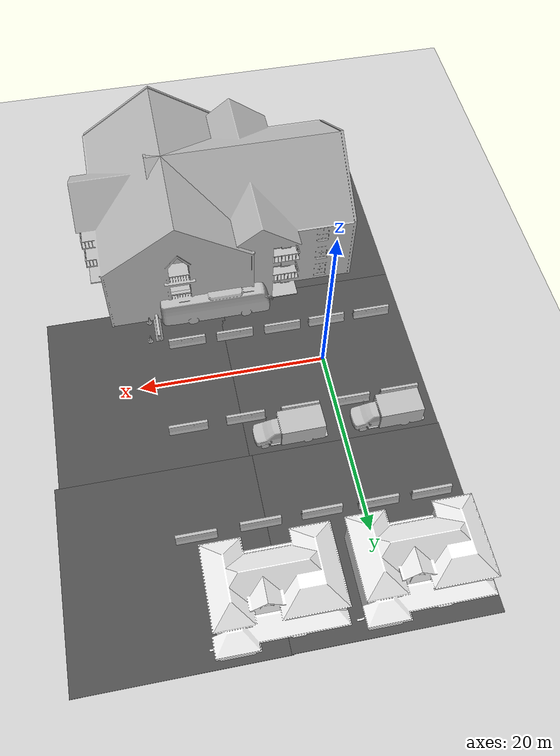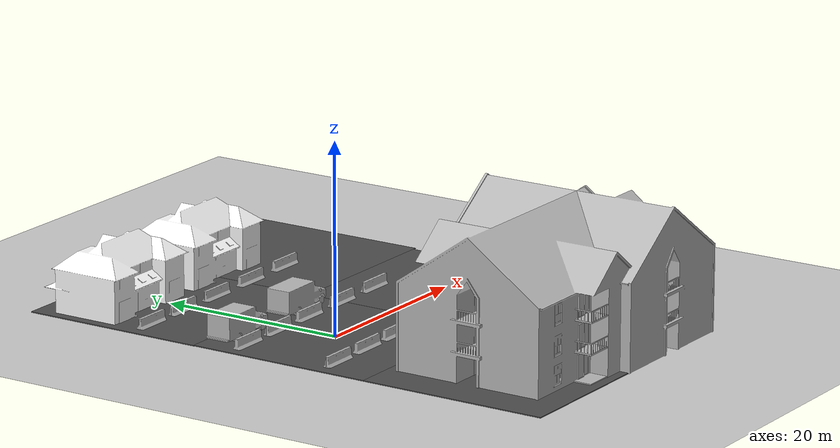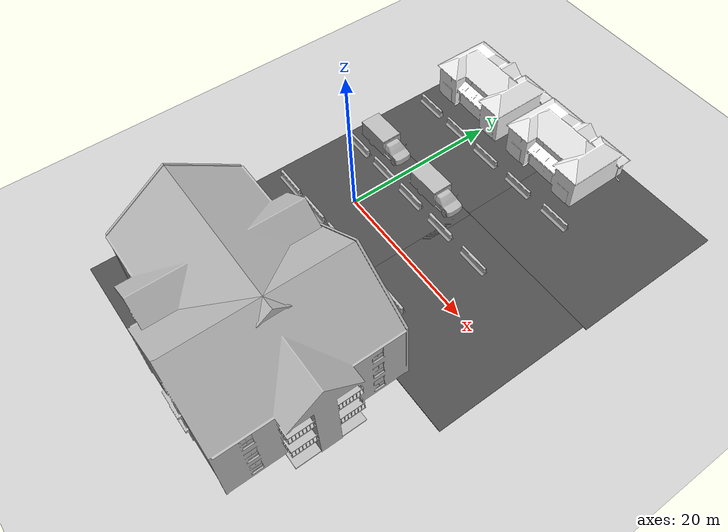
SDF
<sdf version="1.6">
 <world name="default">
  <model name="ground_plane">
   <static>1</static>
   <link name="link">
    <collision name="collision">
     <geometry><plane><normal>0 0 1</normal><size>100 100</size></plane></geometry>
     <surface><friction><ode><mu>100</mu><mu2>50</mu2></ode></friction></surface>
    </collision>
    <visual name="visual">
     <cast_shadows>0</cast_shadows>
     <geometry><plane><normal>0 0 1</normal><size>100 100</size></plane></geometry>
     <material>
      <script><uri>file://media/materials/scripts/gazebo.material</uri><name>Gazebo/Grey</name></script>
     </material>
    </visual>
   </link>
  </model>
  <model name="asphalt_plane">
   <static>1</static>
   <link name="link">
    <collision name="collision"><geometry><box><size>20 20 0.1</size></box></geometry></collision>
    <visual name="visual">
     <cast_shadows>0</cast_shadows>
     <geometry><box><size>20 20 0.1</size></box></geometry>
     <material>
      <script>
       <uri>model://asphalt_plane/materials/scripts</uri>
       <uri>model://asphalt_plane/materials/textures</uri>
       <name>vrc/asphalt</name>
      </script>
     </material>
    </visual>
   </link>
   <pose>0.038401 -0.024145 0 0 -0 0</pose>
  </model>
  <model name="ambulance_clone_0">
   <static>1</static>
   <link name="link">
    <collision name="collision">
     <geometry>
      <mesh><scale>0.0254 0.0254 0.0254</scale><uri>model://ambulance/meshes/ambulance.obj</uri></mesh>
     </geometry>
    </collision>
    <visual name="visual">
     <geometry>
      <mesh><scale>0.0254 0.0254 0.0254</scale><uri>model://ambulance/meshes/ambulance.obj</uri></mesh>
     </geometry>
    </visual>
   </link>
   <pose>5.43885 8.29699 0 0 -0 1.58332</pose>
  </model>
  <model name="ambulance_clone_1">
   <static>1</static>
   <link name="link">
    <collision name="collision">
     <geometry>
      <mesh><scale>0.0254 0.0254 0.0254</scale><uri>model://ambulance/meshes/ambulance.obj</uri></mesh>
     </geometry>
    </collision>
    <visual name="visual">
     <geometry>
      <mesh><scale>0.0254 0.0254 0.0254</scale><uri>model://ambulance/meshes/ambulance.obj</uri></mesh>
     </geometry>
    </visual>
   </link>
   <pose>-4.8495 8.29333 0 0 -0 1.58332</pose>
  </model>
  <model name="bus_clone_clone_0">
   <static>1</static>
   <link name="link">
    <collision name="collision">
     <geometry><mesh><scale>0.01 0.01 0.01</scale><uri>model://bus/meshes/bus.obj</uri></mesh></geometry>
    </collision>
    <visual name="visual">
     <geometry><mesh><scale>0.01 0.01 0.01</scale><uri>model://bus/meshes/bus.obj</uri></mesh></geometry>
    </visual>
   </link>
   <pose>10.3358 -8.52883 0 0 0 -1.56946</pose>
  </model>
  <model name="jersey_barrier_clone_clone_6">
   <static>1</static>
   <link name="link">
    <visual name="visual">
     <geometry><mesh><uri>model://jersey_barrier/meshes/jersey_barrier.dae</uri></mesh></geometry>
    </visual>
    <collision name="upright">
     <pose>0 0 0.5715 0 -0 0</pose>
     <geometry><box><size>4.06542 0.3063 1.143</size></box></geometry>
    </collision>
    <collision name="base">
     <pose>0 0 0.032258 0 -0 0</pose>
     <geometry><box><size>4.06542 0.8107 0.064516</size></box></geometry>
    </collision>
    <collision name="base2">
     <pose>0 0 0.1 0 -0 0</pose>
     <geometry><box><size>4.06542 0.65 0.1</size></box></geometry>
    </collision>
    <collision name="base3">
     <pose>0 0 0.2 0 -0 0</pose>
     <geometry><box><size>4.06542 0.5 0.1</size></box></geometry>
    </collision>
    <collision name="left-angle">
     <pose>0 -0.224 0.2401 0.9 -0 0</pose>
     <geometry><box><size>4.06542 0.5 0.064516</size></box></geometry>
    </collision>
    <collision name="right-angle">
     <pose>0 0.224 0.2401 -0.9 0 0</pose>
     <geometry><box><size>4.06542 0.5 0.064516</size></box></geometry>
    </collision>
   </link>
   <pose>-6.91533 5.59727 0 0 -0 0</pose>
  </model>
  <model name="jersey_barrier_clone_clone_7">
   <static>1</static>
   <link name="link">
    <visual name="visual">
     <geometry><mesh><uri>model://jersey_barrier/meshes/jersey_barrier.dae</uri></mesh></geometry>
    </visual>
    <collision name="upright">
     <pose>0 0 0.5715 0 -0 0</pose>
     <geometry><box><size>4.06542 0.3063 1.143</size></box></geometry>
    </collision>
    <collision name="base">
     <pose>0 0 0.032258 0 -0 0</pose>
     <geometry><box><size>4.06542 0.8107 0.064516</size></box></geometry>
    </collision>
    <collision name="base2">
     <pose>0 0 0.1 0 -0 0</pose>
     <geometry><box><size>4.06542 0.65 0.1</size></box></geometry>
    </collision>
    <collision name="base3">
     <pose>0 0 0.2 0 -0 0</pose>
     <geometry><box><size>4.06542 0.5 0.1</size></box></geometry>
    </collision>
    <collision name="left-angle">
     <pose>0 -0.224 0.2401 0.9 -0 0</pose>
     <geometry><box><size>4.06542 0.5 0.064516</size></box></geometry>
    </collision>
    <collision name="right-angle">
     <pose>0 0.224 0.2401 -0.9 0 0</pose>
     <geometry><box><size>4.06542 0.5 0.064516</size></box></geometry>
    </collision>
   </link>
   <pose>-1.61842 5.66994 0 0 -0 0</pose>
  </model>
  <model name="jersey_barrier_clone_clone_8">
   <static>1</static>
   <link name="link">
    <visual name="visual">
     <geometry><mesh><uri>model://jersey_barrier/meshes/jersey_barrier.dae</uri></mesh></geometry>
    </visual>
    <collision name="upright">
     <pose>0 0 0.5715 0 -0 0</pose>
     <geometry><box><size>4.06542 0.3063 1.143</size></box></geometry>
    </collision>
    <collision name="base">
     <pose>0 0 0.032258 0 -0 0</pose>
     <geometry><box><size>4.06542 0.8107 0.064516</size></box></geometry>
    </collision>
    <collision name="base2">
     <pose>0 0 0.1 0 -0 0</pose>
     <geometry><box><size>4.06542 0.65 0.1</size></box></geometry>
    </collision>
    <collision name="base3">
     <pose>0 0 0.2 0 -0 0</pose>
     <geometry><box><size>4.06542 0.5 0.1</size></box></geometry>
    </collision>
    <collision name="left-angle">
     <pose>0 -0.224 0.2401 0.9 -0 0</pose>
     <geometry><box><size>4.06542 0.5 0.064516</size></box></geometry>
    </collision>
    <collision name="right-angle">
     <pose>0 0.224 0.2401 -0.9 0 0</pose>
     <geometry><box><size>4.06542 0.5 0.064516</size></box></geometry>
    </collision>
   </link>
   <pose>3.81822 5.69762 0 0 -0 0</pose>
  </model>
  <model name="jersey_barrier_clone_clone_9">
   <static>1</static>
   <link name="link">
    <visual name="visual">
     <geometry><mesh><uri>model://jersey_barrier/meshes/jersey_barrier.dae</uri></mesh></geometry>
    </visual>
    <collision name="upright">
     <pose>0 0 0.5715 0 -0 0</pose>
     <geometry><box><size>4.06542 0.3063 1.143</size></box></geometry>
    </collision>
    <collision name="base">
     <pose>0 0 0.032258 0 -0 0</pose>
     <geometry><box><size>4.06542 0.8107 0.064516</size></box></geometry>
    </collision>
    <collision name="base2">
     <pose>0 0 0.1 0 -0 0</pose>
     <geometry><box><size>4.06542 0.65 0.1</size></box></geometry>
    </collision>
    <collision name="base3">
     <pose>0 0 0.2 0 -0 0</pose>
     <geometry><box><size>4.06542 0.5 0.1</size></box></geometry>
    </collision>
    <collision name="left-angle">
     <pose>0 -0.224 0.2401 0.9 -0 0</pose>
     <geometry><box><size>4.06542 0.5 0.064516</size></box></geometry>
    </collision>
    <collision name="right-angle">
     <pose>0 0.224 0.2401 -0.9 0 0</pose>
     <geometry><box><size>4.06542 0.5 0.064516</size></box></geometry>
    </collision>
   </link>
   <pose>9.6281 5.69665 0 0 -0 0</pose>
  </model>
  <model name="jersey_barrier_clone_clone_10">
   <static>1</static>
   <link name="link">
    <visual name="visual">
     <geometry><mesh><uri>model://jersey_barrier/meshes/jersey_barrier.dae</uri></mesh></geometry>
    </visual>
    <collision name="upright">
     <pose>0 0 0.5715 0 -0 0</pose>
     <geometry><box><size>4.06542 0.3063 1.143</size></box></geometry>
    </collision>
    <collision name="base">
     <pose>0 0 0.032258 0 -0 0</pose>
     <geometry><box><size>4.06542 0.8107 0.064516</size></box></geometry>
    </collision>
    <collision name="base2">
     <pose>0 0 0.1 0 -0 0</pose>
     <geometry><box><size>4.06542 0.65 0.1</size></box></geometry>
    </collision>
    <collision name="base3">
     <pose>0 0 0.2 0 -0 0</pose>
     <geometry><box><size>4.06542 0.5 0.1</size></box></geometry>
    </collision>
    <collision name="left-angle">
     <pose>0 -0.224 0.2401 0.9 -0 0</pose>
     <geometry><box><size>4.06542 0.5 0.064516</size></box></geometry>
    </collision>
    <collision name="right-angle">
     <pose>0 0.224 0.2401 -0.9 0 0</pose>
     <geometry><box><size>4.06542 0.5 0.064516</size></box></geometry>
    </collision>
   </link>
   <pose>15.6527 5.7646 0 0 -0 0</pose>
  </model>
  <model name="asphalt_plane_0_clone_clone_clone">
   <static>1</static>
   <link name="link">
    <collision name="collision"><geometry><box><size>20 20 0.1</size></box></geometry></collision>
    <visual name="visual">
     <cast_shadows>0</cast_shadows>
     <geometry><box><size>20 20 0.1</size></box></geometry>
     <material>
      <script>
       <uri>model://asphalt_plane/materials/scripts</uri>
       <uri>model://asphalt_plane/materials/textures</uri>
       <name>vrc/asphalt</name>
      </script>
     </material>
    </visual>
   </link>
   <pose>19.7772 19.9803 0 0 -0 0</pose>
  </model>
  <model name="asphalt_plane_0_clone_clone_clone_0">
   <static>1</static>
   <link name="link">
    <collision name="collision"><geometry><box><size>20 20 0.1</size></box></geometry></collision>
    <visual name="visual">
     <cast_shadows>0</cast_shadows>
     <geometry><box><size>20 20 0.1</size></box></geometry>
     <material>
      <script>
       <uri>model://asphalt_plane/materials/scripts</uri>
       <uri>model://asphalt_plane/materials/textures</uri>
       <name>vrc/asphalt</name>
      </script>
     </material>
    </visual>
   </link>
   <pose>-0.023534 19.9191 0 0 -0 0</pose>
  </model>
  <model name="asphalt_plane_clone">
   <static>1</static>
   <link name="link">
    <collision name="collision"><geometry><box><size>20 20 0.1</size></box></geometry></collision>
    <visual name="visual">
     <cast_shadows>0</cast_shadows>
     <geometry><box><size>20 20 0.1</size></box></geometry>
     <material>
      <script>
       <uri>model://asphalt_plane/materials/scripts</uri>
       <uri>model://asphalt_plane/materials/textures</uri>
       <name>vrc/asphalt</name>
      </script>
     </material>
    </visual>
   </link>
   <pose>0.029124 -19.9947 0 0 -0 0</pose>
  </model>
  <model name="asphalt_plane_clone_0">
   <static>1</static>
   <link name="link">
    <collision name="collision"><geometry><box><size>20 20 0.1</size></box></geometry></collision>
    <visual name="visual">
     <cast_shadows>0</cast_shadows>
     <geometry><box><size>20 20 0.1</size></box></geometry>
     <material>
      <script>
       <uri>model://asphalt_plane/materials/scripts</uri>
       <uri>model://asphalt_plane/materials/textures</uri>
       <name>vrc/asphalt</name>
      </script>
     </material>
    </visual>
   </link>
   <pose>19.3312 0.000609 0 0 -0 0</pose>
  </model>
  <model name="apartment">
   <static>1</static>
   <link name="link">
    <collision name="collision">
     <geometry><mesh><uri>model://apartment/meshes/apartment.dae</uri></mesh></geometry>
    </collision>
    <visual name="visual">
     <geometry><mesh><uri>model://apartment/meshes/apartment.dae</uri></mesh></geometry>
    </visual>
   </link>
   <pose>14.0681 -19.3365 0 0 -0 0</pose>
  </model>
  <model name="apartment_clone">
   <static>1</static>
   <link name="link">
    <collision name="collision">
     <geometry><mesh><uri>model://apartment/meshes/apartment.dae</uri></mesh></geometry>
    </collision>
    <visual name="visual">
     <geometry><mesh><uri>model://apartment/meshes/apartment.dae</uri></mesh></geometry>
    </visual>
   </link>
   <pose>5.00965 -19.0612 0 0 -0 1.57096</pose>
  </model>
  <model name="jersey_barrier_clone_clone_8_clone">
   <static>1</static>
   <link name="link">
    <visual name="visual">
     <geometry><mesh><uri>model://jersey_barrier/meshes/jersey_barrier.dae</uri></mesh></geometry>
    </visual>
    <collision name="upright">
     <pose>0 0 0.5715 0 -0 0</pose>
     <geometry><box><size>4.06542 0.3063 1.143</size></box></geometry>
    </collision>
    <collision name="base">
     <pose>0 0 0.032258 0 -0 0</pose>
     <geometry><box><size>4.06542 0.8107 0.064516</size></box></geometry>
    </collision>
    <collision name="base2">
     <pose>0 0 0.1 0 -0 0</pose>
     <geometry><box><size>4.06542 0.65 0.1</size></box></geometry>
    </collision>
    <collision name="base3">
     <pose>0 0 0.2 0 -0 0</pose>
     <geometry><box><size>4.06542 0.5 0.1</size></box></geometry>
    </collision>
    <collision name="left-angle">
     <pose>0 -0.224 0.2401 0.9 -0 0</pose>
     <geometry><box><size>4.06542 0.5 0.064516</size></box></geometry>
    </collision>
    <collision name="right-angle">
     <pose>0 0.224 0.2401 -0.9 0 0</pose>
     <geometry><box><size>4.06542 0.5 0.064516</size></box></geometry>
    </collision>
   </link>
   <pose>-6.69048 -4.89725 0 0 -0 0</pose>
  </model>
  <model name="jersey_barrier_clone_clone_8_clone_0">
   <static>1</static>
   <link name="link">
    <visual name="visual">
     <geometry><mesh><uri>model://jersey_barrier/meshes/jersey_barrier.dae</uri></mesh></geometry>
    </visual>
    <collision name="upright">
     <pose>0 0 0.5715 0 -0 0</pose>
     <geometry><box><size>4.06542 0.3063 1.143</size></box></geometry>
    </collision>
    <collision name="base">
     <pose>0 0 0.032258 0 -0 0</pose>
     <geometry><box><size>4.06542 0.8107 0.064516</size></box></geometry>
    </collision>
    <collision name="base2">
     <pose>0 0 0.1 0 -0 0</pose>
     <geometry><box><size>4.06542 0.65 0.1</size></box></geometry>
    </collision>
    <collision name="base3">
     <pose>0 0 0.2 0 -0 0</pose>
     <geometry><box><size>4.06542 0.5 0.1</size></box></geometry>
    </collision>
    <collision name="left-angle">
     <pose>0 -0.224 0.2401 0.9 -0 0</pose>
     <geometry><box><size>4.06542 0.5 0.064516</size></box></geometry>
    </collision>
    <collision name="right-angle">
     <pose>0 0.224 0.2401 -0.9 0 0</pose>
     <geometry><box><size>4.06542 0.5 0.064516</size></box></geometry>
    </collision>
   </link>
   <pose>-1.51348 -4.8357 0 0 -0 0</pose>
  </model>
  <model name="jersey_barrier_clone_clone_8_clone_1">
   <static>1</static>
   <link name="link">
    <visual name="visual">
     <geometry><mesh><uri>model://jersey_barrier/meshes/jersey_barrier.dae</uri></mesh></geometry>
    </visual>
    <collision name="upright">
     <pose>0 0 0.5715 0 -0 0</pose>
     <geometry><box><size>4.06542 0.3063 1.143</size></box></geometry>
    </collision>
    <collision name="base">
     <pose>0 0 0.032258 0 -0 0</pose>
     <geometry><box><size>4.06542 0.8107 0.064516</size></box></geometry>
    </collision>
    <collision name="base2">
     <pose>0 0 0.1 0 -0 0</pose>
     <geometry><box><size>4.06542 0.65 0.1</size></box></geometry>
    </collision>
    <collision name="base3">
     <pose>0 0 0.2 0 -0 0</pose>
     <geometry><box><size>4.06542 0.5 0.1</size></box></geometry>
    </collision>
    <collision name="left-angle">
     <pose>0 -0.224 0.2401 0.9 -0 0</pose>
     <geometry><box><size>4.06542 0.5 0.064516</size></box></geometry>
    </collision>
    <collision name="right-angle">
     <pose>0 0.224 0.2401 -0.9 0 0</pose>
     <geometry><box><size>4.06542 0.5 0.064516</size></box></geometry>
    </collision>
   </link>
   <pose>3.52325 -4.78507 0 0 -0 0</pose>
  </model>
  <model name="jersey_barrier_clone_clone_8_clone_2">
   <static>1</static>
   <link name="link">
    <visual name="visual">
     <geometry><mesh><uri>model://jersey_barrier/meshes/jersey_barrier.dae</uri></mesh></geometry>
    </visual>
    <collision name="upright">
     <pose>0 0 0.5715 0 -0 0</pose>
     <geometry><box><size>4.06542 0.3063 1.143</size></box></geometry>
    </collision>
    <collision name="base">
     <pose>0 0 0.032258 0 -0 0</pose>
     <geometry><box><size>4.06542 0.8107 0.064516</size></box></geometry>
    </collision>
    <collision name="base2">
     <pose>0 0 0.1 0 -0 0</pose>
     <geometry><box><size>4.06542 0.65 0.1</size></box></geometry>
    </collision>
    <collision name="base3">
     <pose>0 0 0.2 0 -0 0</pose>
     <geometry><box><size>4.06542 0.5 0.1</size></box></geometry>
    </collision>
    <collision name="left-angle">
     <pose>0 -0.224 0.2401 0.9 -0 0</pose>
     <geometry><box><size>4.06542 0.5 0.064516</size></box></geometry>
    </collision>
    <collision name="right-angle">
     <pose>0 0.224 0.2401 -0.9 0 0</pose>
     <geometry><box><size>4.06542 0.5 0.064516</size></box></geometry>
    </collision>
   </link>
   <pose>8.89024 -4.80077 0 0 -0 0</pose>
  </model>
  <model name="jersey_barrier_clone_clone_8_clone_3">
   <static>1</static>
   <link name="link">
    <visual name="visual">
     <geometry><mesh><uri>model://jersey_barrier/meshes/jersey_barrier.dae</uri></mesh></geometry>
    </visual>
    <collision name="upright">
     <pose>0 0 0.5715 0 -0 0</pose>
     <geometry><box><size>4.06542 0.3063 1.143</size></box></geometry>
    </collision>
    <collision name="base">
     <pose>0 0 0.032258 0 -0 0</pose>
     <geometry><box><size>4.06542 0.8107 0.064516</size></box></geometry>
    </collision>
    <collision name="base2">
     <pose>0 0 0.1 0 -0 0</pose>
     <geometry><box><size>4.06542 0.65 0.1</size></box></geometry>
    </collision>
    <collision name="base3">
     <pose>0 0 0.2 0 -0 0</pose>
     <geometry><box><size>4.06542 0.5 0.1</size></box></geometry>
    </collision>
    <collision name="left-angle">
     <pose>0 -0.224 0.2401 0.9 -0 0</pose>
     <geometry><box><size>4.06542 0.5 0.064516</size></box></geometry>
    </collision>
    <collision name="right-angle">
     <pose>0 0.224 0.2401 -0.9 0 0</pose>
     <geometry><box><size>4.06542 0.5 0.064516</size></box></geometry>
    </collision>
   </link>
   <pose>14.1981 -4.82424 0 0 -0 0</pose>
  </model>
  <model name="House 2_clone">
   <static>1</static>
   <link name="link">
    <collision name="collision">
     <geometry><mesh><uri>model://house_2/meshes/house_2.dae</uri><scale>1.5 1.5 1.5</scale></mesh></geometry>
    </collision>
    <visual name="visual">
     <geometry><mesh><uri>model://house_2/meshes/house_2.dae</uri><scale>1.5 1.5 1.5</scale></mesh></geometry>
     <material>
      <script>
       <uri>model://house_2/materials/scripts</uri>
       <uri>model://house_2/materials/textures</uri>
       <uri>model://house_1/materials/textures</uri>
       <name>House_2/Diffuse</name>
      </script>
      <shader type="normal_map_tangent_space">
       <normal_map>model://house_1/materials/textures/House_1_Normal.png</normal_map>
      </shader>
     </material>
    </visual>
   </link>
   <pose>9.562 24.1064 0 0 -0 0</pose>
  </model>
  <model name="House 2_clone_0">
   <static>1</static>
   <link name="link">
    <collision name="collision">
     <geometry><mesh><uri>model://house_2/meshes/house_2.dae</uri><scale>1.5 1.5 1.5</scale></mesh></geometry>
    </collision>
    <visual name="visual">
     <geometry><mesh><uri>model://house_2/meshes/house_2.dae</uri><scale>1.5 1.5 1.5</scale></mesh></geometry>
     <material>
      <script>
       <uri>model://house_2/materials/scripts</uri>
       <uri>model://house_2/materials/textures</uri>
       <uri>model://house_1/materials/textures</uri>
       <name>House_2/Diffuse</name>
      </script>
      <shader type="normal_map_tangent_space">
       <normal_map>model://house_1/materials/textures/House_1_Normal.png</normal_map>
      </shader>
     </material>
    </visual>
   </link>
   <pose>-4.05168 24.0012 0 0 -0 0</pose>
  </model>
  <model name="jersey_barrier_clone_clone_10_clone">
   <static>1</static>
   <link name="link">
    <visual name="visual">
     <geometry><mesh><uri>model://jersey_barrier/meshes/jersey_barrier.dae</uri></mesh></geometry>
    </visual>
    <collision name="upright">
     <pose>0 0 0.5715 0 -0 0</pose>
     <geometry><box><size>4.06542 0.3063 1.143</size></box></geometry>
    </collision>
    <collision name="base">
     <pose>0 0 0.032258 0 -0 0</pose>
     <geometry><box><size>4.06542 0.8107 0.064516</size></box></geometry>
    </collision>
    <collision name="base2">
     <pose>0 0 0.1 0 -0 0</pose>
     <geometry><box><size>4.06542 0.65 0.1</size></box></geometry>
    </collision>
    <collision name="base3">
     <pose>0 0 0.2 0 -0 0</pose>
     <geometry><box><size>4.06542 0.5 0.1</size></box></geometry>
    </collision>
    <collision name="left-angle">
     <pose>0 -0.224 0.2401 0.9 -0 0</pose>
     <geometry><box><size>4.06542 0.5 0.064516</size></box></geometry>
    </collision>
    <collision name="right-angle">
     <pose>0 0.224 0.2401 -0.9 0 0</pose>
     <geometry><box><size>4.06542 0.5 0.064516</size></box></geometry>
    </collision>
   </link>
   <pose>-6.86303 17.3309 0 0 -0 0</pose>
  </model>
  <model name="jersey_barrier_clone_clone_10_clone_0">
   <static>1</static>
   <link name="link">
    <visual name="visual">
     <geometry><mesh><uri>model://jersey_barrier/meshes/jersey_barrier.dae</uri></mesh></geometry>
    </visual>
    <collision name="upright">
     <pose>0 0 0.5715 0 -0 0</pose>
     <geometry><box><size>4.06542 0.3063 1.143</size></box></geometry>
    </collision>
    <collision name="base">
     <pose>0 0 0.032258 0 -0 0</pose>
     <geometry><box><size>4.06542 0.8107 0.064516</size></box></geometry>
    </collision>
    <collision name="base2">
     <pose>0 0 0.1 0 -0 0</pose>
     <geometry><box><size>4.06542 0.65 0.1</size></box></geometry>
    </collision>
    <collision name="base3">
     <pose>0 0 0.2 0 -0 0</pose>
     <geometry><box><size>4.06542 0.5 0.1</size></box></geometry>
    </collision>
    <collision name="left-angle">
     <pose>0 -0.224 0.2401 0.9 -0 0</pose>
     <geometry><box><size>4.06542 0.5 0.064516</size></box></geometry>
    </collision>
    <collision name="right-angle">
     <pose>0 0.224 0.2401 -0.9 0 0</pose>
     <geometry><box><size>4.06542 0.5 0.064516</size></box></geometry>
    </collision>
   </link>
   <pose>-1.44866 17.3531 0 0 -0 0</pose>
  </model>
  <model name="jersey_barrier_clone_clone_10_clone_1">
   <static>1</static>
   <link name="link">
    <visual name="visual">
     <geometry><mesh><uri>model://jersey_barrier/meshes/jersey_barrier.dae</uri></mesh></geometry>
    </visual>
    <collision name="upright">
     <pose>0 0 0.5715 0 -0 0</pose>
     <geometry><box><size>4.06542 0.3063 1.143</size></box></geometry>
    </collision>
    <collision name="base">
     <pose>0 0 0.032258 0 -0 0</pose>
     <geometry><box><size>4.06542 0.8107 0.064516</size></box></geometry>
    </collision>
    <collision name="base2">
     <pose>0 0 0.1 0 -0 0</pose>
     <geometry><box><size>4.06542 0.65 0.1</size></box></geometry>
    </collision>
    <collision name="base3">
     <pose>0 0 0.2 0 -0 0</pose>
     <geometry><box><size>4.06542 0.5 0.1</size></box></geometry>
    </collision>
    <collision name="left-angle">
     <pose>0 -0.224 0.2401 0.9 -0 0</pose>
     <geometry><box><size>4.06542 0.5 0.064516</size></box></geometry>
    </collision>
    <collision name="right-angle">
     <pose>0 0.224 0.2401 -0.9 0 0</pose>
     <geometry><box><size>4.06542 0.5 0.064516</size></box></geometry>
    </collision>
   </link>
   <pose>4.23364 17.311 0 0 -0 0</pose>
  </model>
  <model name="jersey_barrier_clone_clone_10_clone_2">
   <static>1</static>
   <link name="link">
    <visual name="visual">
     <geometry><mesh><uri>model://jersey_barrier/meshes/jersey_barrier.dae</uri></mesh></geometry>
    </visual>
    <collision name="upright">
     <pose>0 0 0.5715 0 -0 0</pose>
     <geometry><box><size>4.06542 0.3063 1.143</size></box></geometry>
    </collision>
    <collision name="base">
     <pose>0 0 0.032258 0 -0 0</pose>
     <geometry><box><size>4.06542 0.8107 0.064516</size></box></geometry>
    </collision>
    <collision name="base2">
     <pose>0 0 0.1 0 -0 0</pose>
     <geometry><box><size>4.06542 0.65 0.1</size></box></geometry>
    </collision>
    <collision name="base3">
     <pose>0 0 0.2 0 -0 0</pose>
     <geometry><box><size>4.06542 0.5 0.1</size></box></geometry>
    </collision>
    <collision name="left-angle">
     <pose>0 -0.224 0.2401 0.9 -0 0</pose>
     <geometry><box><size>4.06542 0.5 0.064516</size></box></geometry>
    </collision>
    <collision name="right-angle">
     <pose>0 0.224 0.2401 -0.9 0 0</pose>
     <geometry><box><size>4.06542 0.5 0.064516</size></box></geometry>
    </collision>
   </link>
   <pose>10.3479 17.3742 0 0 -0 0</pose>
  </model>
  <model name="jersey_barrier_clone_clone_10_clone_3">
   <static>1</static>
   <link name="link">
    <visual name="visual">
     <geometry><mesh><uri>model://jersey_barrier/meshes/jersey_barrier.dae</uri></mesh></geometry>
    </visual>
    <collision name="upright">
     <pose>0 0 0.5715 0 -0 0</pose>
     <geometry><box><size>4.06542 0.3063 1.143</size></box></geometry>
    </collision>
    <collision name="base">
     <pose>0 0 0.032258 0 -0 0</pose>
     <geometry><box><size>4.06542 0.8107 0.064516</size></box></geometry>
    </collision>
    <collision name="base2">
     <pose>0 0 0.1 0 -0 0</pose>
     <geometry><box><size>4.06542 0.65 0.1</size></box></geometry>
    </collision>
    <collision name="base3">
     <pose>0 0 0.2 0 -0 0</pose>
     <geometry><box><size>4.06542 0.5 0.1</size></box></geometry>
    </collision>
    <collision name="left-angle">
     <pose>0 -0.224 0.2401 0.9 -0 0</pose>
     <geometry><box><size>4.06542 0.5 0.064516</size></box></geometry>
    </collision>
    <collision name="right-angle">
     <pose>0 0.224 0.2401 -0.9 0 0</pose>
     <geometry><box><size>4.06542 0.5 0.064516</size></box></geometry>
    </collision>
   </link>
   <pose>16.6687 17.5357 0 0 -0 0</pose>
  </model>
  <model name="jersey_barrier_clone_clone_10_clone_4_clone_2_clone_0">
   <static>1</static>
   <link name="link">
    <visual name="visual">
     <geometry><mesh><uri>model://jersey_barrier/meshes/jersey_barrier.dae</uri></mesh></geometry>
    </visual>
    <collision name="upright">
     <pose>0 0 0.5715 0 -0 0</pose>
     <geometry><box><size>4.06542 0.3063 1.143</size></box></geometry>
    </collision>
    <collision name="base">
     <pose>0 0 0.032258 0 -0 0</pose>
     <geometry><box><size>4.06542 0.8107 0.064516</size></box></geometry>
    </collision>
    <collision name="base2">
     <pose>0 0 0.1 0 -0 0</pose>
     <geometry><box><size>4.06542 0.65 0.1</size></box></geometry>
    </collision>
    <collision name="base3">
     <pose>0 0 0.2 0 -0 0</pose>
     <geometry><box><size>4.06542 0.5 0.1</size></box></geometry>
    </collision>
    <collision name="left-angle">
     <pose>0 -0.224 0.2401 0.9 -0 0</pose>
     <geometry><box><size>4.06542 0.5 0.064516</size></box></geometry>
    </collision>
    <collision name="right-angle">
     <pose>0 0.224 0.2401 -0.9 0 0</pose>
     <geometry><box><size>4.06542 0.5 0.064516</size></box></geometry>
    </collision>
   </link>
   <pose>17.1152 -7.70696 0 0 -0 1.56251</pose>
  </model>
  <model name="Construction Cone_clone_1">
   <link name="link">
    <collision name="collision">
     <geometry>
      <mesh><scale>10 10 10</scale><uri>model://construction_cone/meshes/construction_cone.dae</uri></mesh>
     </geometry>
    </collision>
    <visual name="visual">
     <geometry>
      <mesh><scale>10 10 10</scale><uri>model://construction_cone/meshes/construction_cone.dae</uri></mesh>
     </geometry>
    </visual>
    <inertial>
     <inertia><ixx>1</ixx><ixy>0</ixy><ixz>0</ixz><iyy>1</iyy><iyz>0</iyz><izz>1</izz></inertia>
     <mass>1</mass>
    </inertial>
   </link>
   <pose>18.1627 -5.83012 0.05 1e-06 0 -0.000256</pose>
  </model>
  <model name="Construction Cone_clone_2">
   <link name="link">
    <collision name="collision">
     <geometry>
      <mesh><scale>10 10 10</scale><uri>model://construction_cone/meshes/construction_cone.dae</uri></mesh>
     </geometry>
    </collision>
    <visual name="visual">
     <geometry>
      <mesh><scale>10 10 10</scale><uri>model://construction_cone/meshes/construction_cone.dae</uri></mesh>
     </geometry>
    </visual>
    <inertial>
     <inertia><ixx>1</ixx><ixy>0</ixy><ixz>0</ixz><iyy>1</iyy><iyz>0</iyz><izz>1</izz></inertia>
     <mass>1</mass>
    </inertial>
   </link>
   <pose>17.9595 -8.2971 0.05 0 -0 0.887037</pose>
  </model>
 </world>
</sdf>
